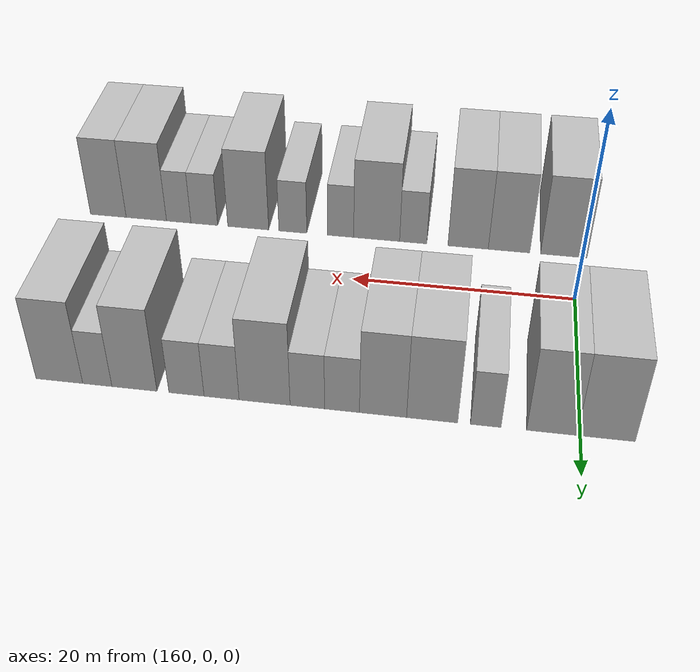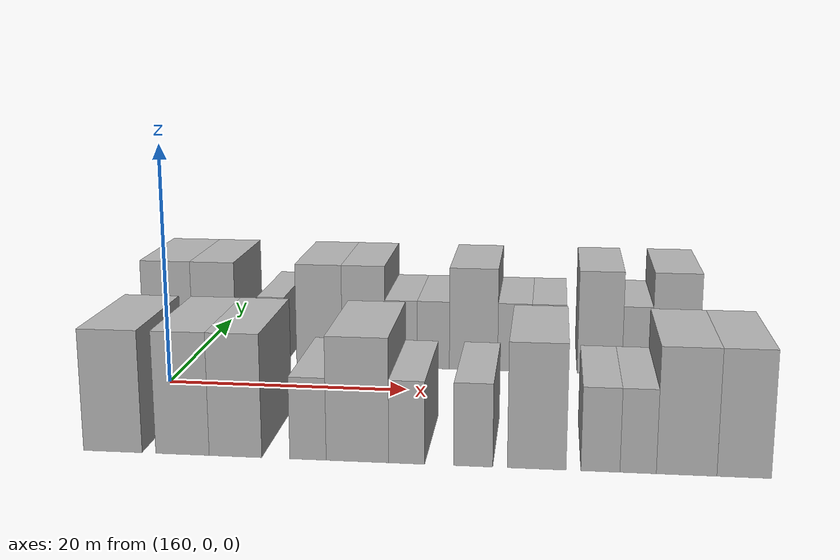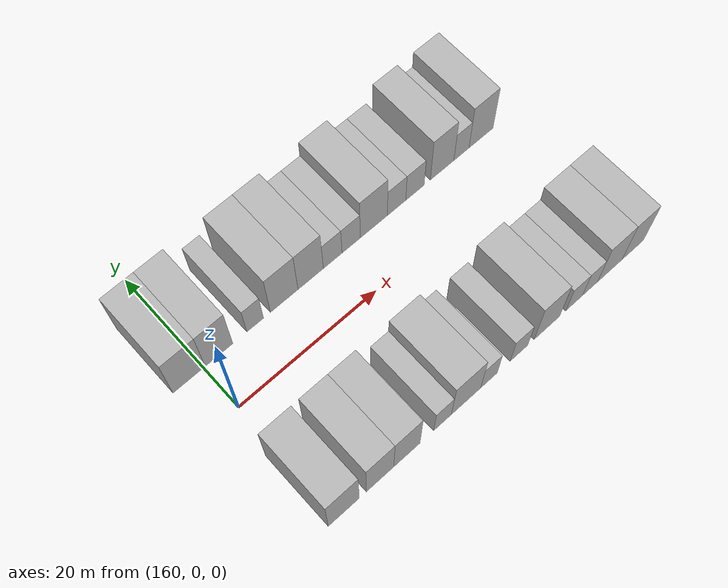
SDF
<sdf version="1.6">
 <world name="default">
  <model name="building_35">
   <static>1</static>
   <pose>157.9924 11.0000 0 0.000000 0.000000 1.570796</pose>
   <link name="link">
    <pose>0 0 4.50 0 0 0</pose>
    <collision name="collision"><geometry><box><size>10.0000 4.4797 9.0000</size></box></geometry></collision>
    <visual name="visual">
     <cast_shadows>0</cast_shadows>
     <geometry><box><size>10.0000 4.4797 9.0000</size></box></geometry>
     <material>
      <script>
       <uri>model://HANNAS_wall/materials/scripts</uri>
       <uri>model://HANNAS_wall/materials/textures</uri>
       <name>vrc/HANNAS_wall</name>
      </script>
     </material>
    </visual>
   </link>
  </model>
  <model name="building_36">
   <static>1</static>
   <pose>162.1914 11.0000 0 0.000000 0.000000 1.570796</pose>
   <link name="link">
    <pose>0 0 4.50 0 0 0</pose>
    <collision name="collision"><geometry><box><size>10.0000 3.9184 9.0000</size></box></geometry></collision>
    <visual name="visual">
     <cast_shadows>0</cast_shadows>
     <geometry><box><size>10.0000 3.9184 9.0000</size></box></geometry>
     <material>
      <script>
       <uri>model://HANNAS_wall/materials/scripts</uri>
       <uri>model://HANNAS_wall/materials/textures</uri>
       <name>vrc/HANNAS_wall</name>
      </script>
     </material>
    </visual>
   </link>
  </model>
  <model name="building_37">
   <static>1</static>
   <pose>167.3576 11.0000 0 0.000000 0.000000 1.570796</pose>
   <link name="link">
    <pose>0 0 3.00 0 0 0</pose>
    <collision name="collision"><geometry><box><size>10.0000 2.4139 6.0000</size></box></geometry></collision>
    <visual name="visual">
     <cast_shadows>0</cast_shadows>
     <geometry><box><size>10.0000 2.4139 6.0000</size></box></geometry>
     <material>
      <script>
       <uri>model://HANNAS_wall/materials/scripts</uri>
       <uri>model://HANNAS_wall/materials/textures</uri>
       <name>vrc/HANNAS_wall</name>
      </script>
     </material>
    </visual>
   </link>
  </model>
  <model name="building_38">
   <static>1</static>
   <pose>171.5949 11.0000 0 0.000000 0.000000 1.570796</pose>
   <link name="link">
    <pose>0 0 4.50 0 0 0</pose>
    <collision name="collision"><geometry><box><size>10.0000 4.0607 9.0000</size></box></geometry></collision>
    <visual name="visual">
     <cast_shadows>0</cast_shadows>
     <geometry><box><size>10.0000 4.0607 9.0000</size></box></geometry>
     <material>
      <script>
       <uri>model://HANNAS_wall/materials/scripts</uri>
       <uri>model://HANNAS_wall/materials/textures</uri>
       <name>vrc/HANNAS_wall</name>
      </script>
     </material>
    </visual>
   </link>
  </model>
  <model name="building_39">
   <static>1</static>
   <pose>175.5178 11.0000 0 0.000000 0.000000 1.570796</pose>
   <link name="link">
    <pose>0 0 4.50 0 0 0</pose>
    <collision name="collision"><geometry><box><size>10.0000 3.7851 9.0000</size></box></geometry></collision>
    <visual name="visual">
     <cast_shadows>0</cast_shadows>
     <geometry><box><size>10.0000 3.7851 9.0000</size></box></geometry>
     <material>
      <script>
       <uri>model://HANNAS_wall/materials/scripts</uri>
       <uri>model://HANNAS_wall/materials/textures</uri>
       <name>vrc/HANNAS_wall</name>
      </script>
     </material>
    </visual>
   </link>
  </model>
  <model name="building_40">
   <static>1</static>
   <pose>178.8198 11.0000 0 0.000000 0.000000 1.570796</pose>
   <link name="link">
    <pose>0 0 3.00 0 0 0</pose>
    <collision name="collision"><geometry><box><size>10.0000 2.8188 6.0000</size></box></geometry></collision>
    <visual name="visual">
     <cast_shadows>0</cast_shadows>
     <geometry><box><size>10.0000 2.8188 6.0000</size></box></geometry>
     <material>
      <script>
       <uri>model://HANNAS_wall/materials/scripts</uri>
       <uri>model://HANNAS_wall/materials/textures</uri>
       <name>vrc/HANNAS_wall</name>
      </script>
     </material>
    </visual>
   </link>
  </model>
  <model name="building_41">
   <static>1</static>
   <pose>181.6317 11.0000 0 0.000000 0.000000 1.570796</pose>
   <link name="link">
    <pose>0 0 3.00 0 0 0</pose>
    <collision name="collision"><geometry><box><size>10.0000 2.8050 6.0000</size></box></geometry></collision>
    <visual name="visual">
     <cast_shadows>0</cast_shadows>
     <geometry><box><size>10.0000 2.8050 6.0000</size></box></geometry>
     <material>
      <script>
       <uri>model://HANNAS_wall/materials/scripts</uri>
       <uri>model://HANNAS_wall/materials/textures</uri>
       <name>vrc/HANNAS_wall</name>
      </script>
     </material>
    </visual>
   </link>
  </model>
  <model name="building_42">
   <static>1</static>
   <pose>185.1262 11.0000 0 0.000000 0.000000 1.570796</pose>
   <link name="link">
    <pose>0 0 4.50 0 0 0</pose>
    <collision name="collision"><geometry><box><size>10.0000 4.1840 9.0000</size></box></geometry></collision>
    <visual name="visual">
     <cast_shadows>0</cast_shadows>
     <geometry><box><size>10.0000 4.1840 9.0000</size></box></geometry>
     <material>
      <script>
       <uri>model://HANNAS_wall/materials/scripts</uri>
       <uri>model://HANNAS_wall/materials/textures</uri>
       <name>vrc/HANNAS_wall</name>
      </script>
     </material>
    </visual>
   </link>
  </model>
  <model name="building_43">
   <static>1</static>
   <pose>188.6675 11.0000 0 0.000000 0.000000 1.570796</pose>
   <link name="link">
    <pose>0 0 3.00 0 0 0</pose>
    <collision name="collision"><geometry><box><size>10.0000 2.8985 6.0000</size></box></geometry></collision>
    <visual name="visual">
     <cast_shadows>0</cast_shadows>
     <geometry><box><size>10.0000 2.8985 6.0000</size></box></geometry>
     <material>
      <script>
       <uri>model://HANNAS_wall/materials/scripts</uri>
       <uri>model://HANNAS_wall/materials/textures</uri>
       <name>vrc/HANNAS_wall</name>
      </script>
     </material>
    </visual>
   </link>
  </model>
  <model name="building_44">
   <static>1</static>
   <pose>191.5837 11.0000 0 0.000000 0.000000 1.570796</pose>
   <link name="link">
    <pose>0 0 3.00 0 0 0</pose>
    <collision name="collision"><geometry><box><size>10.0000 2.9341 6.0000</size></box></geometry></collision>
    <visual name="visual">
     <cast_shadows>0</cast_shadows>
     <geometry><box><size>10.0000 2.9341 6.0000</size></box></geometry>
     <material>
      <script>
       <uri>model://HANNAS_wall/materials/scripts</uri>
       <uri>model://HANNAS_wall/materials/textures</uri>
       <name>vrc/HANNAS_wall</name>
      </script>
     </material>
    </visual>
   </link>
  </model>
  <model name="building_45">
   <static>1</static>
   <pose>195.9480 11.0000 0 0.000000 0.000000 1.570796</pose>
   <link name="link">
    <pose>0 0 4.50 0 0 0</pose>
    <collision name="collision"><geometry><box><size>10.0000 3.7945 9.0000</size></box></geometry></collision>
    <visual name="visual">
     <cast_shadows>0</cast_shadows>
     <geometry><box><size>10.0000 3.7945 9.0000</size></box></geometry>
     <material>
      <script>
       <uri>model://HANNAS_wall/materials/scripts</uri>
       <uri>model://HANNAS_wall/materials/textures</uri>
       <name>vrc/HANNAS_wall</name>
      </script>
     </material>
    </visual>
   </link>
  </model>
  <model name="building_46">
   <static>1</static>
   <pose>199.0831 11.0000 0 0.000000 0.000000 1.570796</pose>
   <link name="link">
    <pose>0 0 3.00 0 0 0</pose>
    <collision name="collision"><geometry><box><size>10.0000 2.4755 6.0000</size></box></geometry></collision>
    <visual name="visual">
     <cast_shadows>0</cast_shadows>
     <geometry><box><size>10.0000 2.4755 6.0000</size></box></geometry>
     <material>
      <script>
       <uri>model://HANNAS_wall/materials/scripts</uri>
       <uri>model://HANNAS_wall/materials/textures</uri>
       <name>vrc/HANNAS_wall</name>
      </script>
     </material>
    </visual>
   </link>
  </model>
  <model name="building_47">
   <static>1</static>
   <pose>202.3173 11.0000 0 0.000000 0.000000 1.570796</pose>
   <link name="link">
    <pose>0 0 4.50 0 0 0</pose>
    <collision name="collision"><geometry><box><size>10.0000 3.9930 9.0000</size></box></geometry></collision>
    <visual name="visual">
     <cast_shadows>0</cast_shadows>
     <geometry><box><size>10.0000 3.9930 9.0000</size></box></geometry>
     <material>
      <script>
       <uri>model://HANNAS_wall/materials/scripts</uri>
       <uri>model://HANNAS_wall/materials/textures</uri>
       <name>vrc/HANNAS_wall</name>
      </script>
     </material>
    </visual>
   </link>
  </model>
  <model name="building_87">
   <static>1</static>
   <pose>160.8537 -11.0000 0 0.000000 0.000000 1.570796</pose>
   <link name="link">
    <pose>0 0 4.50 0 0 0</pose>
    <collision name="collision"><geometry><box><size>10.0000 4.3074 9.0000</size></box></geometry></collision>
    <visual name="visual">
     <cast_shadows>0</cast_shadows>
     <geometry><box><size>10.0000 4.3074 9.0000</size></box></geometry>
     <material>
      <script>
       <uri>model://HANNAS_wall/materials/scripts</uri>
       <uri>model://HANNAS_wall/materials/textures</uri>
       <name>vrc/HANNAS_wall</name>
      </script>
     </material>
    </visual>
   </link>
  </model>
  <model name="building_88">
   <static>1</static>
   <pose>165.9508 -11.0000 0 0.000000 0.000000 1.570796</pose>
   <link name="link">
    <pose>0 0 4.50 0 0 0</pose>
    <collision name="collision"><geometry><box><size>10.0000 3.8868 9.0000</size></box></geometry></collision>
    <visual name="visual">
     <cast_shadows>0</cast_shadows>
     <geometry><box><size>10.0000 3.8868 9.0000</size></box></geometry>
     <material>
      <script>
       <uri>model://HANNAS_wall/materials/scripts</uri>
       <uri>model://HANNAS_wall/materials/textures</uri>
       <name>vrc/HANNAS_wall</name>
      </script>
     </material>
    </visual>
   </link>
  </model>
  <model name="building_89">
   <static>1</static>
   <pose>169.7916 -11.0000 0 0.000000 0.000000 1.570796</pose>
   <link name="link">
    <pose>0 0 4.50 0 0 0</pose>
    <collision name="collision"><geometry><box><size>10.0000 3.7949 9.0000</size></box></geometry></collision>
    <visual name="visual">
     <cast_shadows>0</cast_shadows>
     <geometry><box><size>10.0000 3.7949 9.0000</size></box></geometry>
     <material>
      <script>
       <uri>model://HANNAS_wall/materials/scripts</uri>
       <uri>model://HANNAS_wall/materials/textures</uri>
       <name>vrc/HANNAS_wall</name>
      </script>
     </material>
    </visual>
   </link>
  </model>
  <model name="building_90">
   <static>1</static>
   <pose>174.9838 -11.0000 0 0.000000 0.000000 1.570796</pose>
   <link name="link">
    <pose>0 0 3.00 0 0 0</pose>
    <collision name="collision"><geometry><box><size>10.0000 2.5894 6.0000</size></box></geometry></collision>
    <visual name="visual">
     <cast_shadows>0</cast_shadows>
     <geometry><box><size>10.0000 2.5894 6.0000</size></box></geometry>
     <material>
      <script>
       <uri>model://HANNAS_wall/materials/scripts</uri>
       <uri>model://HANNAS_wall/materials/textures</uri>
       <name>vrc/HANNAS_wall</name>
      </script>
     </material>
    </visual>
   </link>
  </model>
  <model name="building_91">
   <static>1</static>
   <pose>178.4813 -11.0000 0 0.000000 0.000000 1.570796</pose>
   <link name="link">
    <pose>0 0 4.50 0 0 0</pose>
    <collision name="collision"><geometry><box><size>10.0000 4.4056 9.0000</size></box></geometry></collision>
    <visual name="visual">
     <cast_shadows>0</cast_shadows>
     <geometry><box><size>10.0000 4.4056 9.0000</size></box></geometry>
     <material>
      <script>
       <uri>model://HANNAS_wall/materials/scripts</uri>
       <uri>model://HANNAS_wall/materials/textures</uri>
       <name>vrc/HANNAS_wall</name>
      </script>
     </material>
    </visual>
   </link>
  </model>
  <model name="building_92">
   <static>1</static>
   <pose>181.9466 -11.0000 0 0.000000 0.000000 1.570796</pose>
   <link name="link">
    <pose>0 0 3.00 0 0 0</pose>
    <collision name="collision"><geometry><box><size>10.0000 2.5250 6.0000</size></box></geometry></collision>
    <visual name="visual">
     <cast_shadows>0</cast_shadows>
     <geometry><box><size>10.0000 2.5250 6.0000</size></box></geometry>
     <material>
      <script>
       <uri>model://HANNAS_wall/materials/scripts</uri>
       <uri>model://HANNAS_wall/materials/textures</uri>
       <name>vrc/HANNAS_wall</name>
      </script>
     </material>
    </visual>
   </link>
  </model>
  <model name="building_93">
   <static>1</static>
   <pose>186.5686 -11.0000 0 0.000000 0.000000 1.570796</pose>
   <link name="link">
    <pose>0 0 3.00 0 0 0</pose>
    <collision name="collision"><geometry><box><size>10.0000 2.7190 6.0000</size></box></geometry></collision>
    <visual name="visual">
     <cast_shadows>0</cast_shadows>
     <geometry><box><size>10.0000 2.7190 6.0000</size></box></geometry>
     <material>
      <script>
       <uri>model://HANNAS_wall/materials/scripts</uri>
       <uri>model://HANNAS_wall/materials/textures</uri>
       <name>vrc/HANNAS_wall</name>
      </script>
     </material>
    </visual>
   </link>
  </model>
  <model name="building_94">
   <static>1</static>
   <pose>190.9398 -11.0000 0 0.000000 0.000000 1.570796</pose>
   <link name="link">
    <pose>0 0 4.50 0 0 0</pose>
    <collision name="collision"><geometry><box><size>10.0000 4.0235 9.0000</size></box></geometry></collision>
    <visual name="visual">
     <cast_shadows>0</cast_shadows>
     <geometry><box><size>10.0000 4.0235 9.0000</size></box></geometry>
     <material>
      <script>
       <uri>model://HANNAS_wall/materials/scripts</uri>
       <uri>model://HANNAS_wall/materials/textures</uri>
       <name>vrc/HANNAS_wall</name>
      </script>
     </material>
    </visual>
   </link>
  </model>
  <model name="building_95">
   <static>1</static>
   <pose>195.2740 -11.0000 0 0.000000 0.000000 1.570796</pose>
   <link name="link">
    <pose>0 0 3.00 0 0 0</pose>
    <collision name="collision"><geometry><box><size>10.0000 2.6449 6.0000</size></box></geometry></collision>
    <visual name="visual">
     <cast_shadows>0</cast_shadows>
     <geometry><box><size>10.0000 2.6449 6.0000</size></box></geometry>
     <material>
      <script>
       <uri>model://HANNAS_wall/materials/scripts</uri>
       <uri>model://HANNAS_wall/materials/textures</uri>
       <name>vrc/HANNAS_wall</name>
      </script>
     </material>
    </visual>
   </link>
  </model>
  <model name="building_96">
   <static>1</static>
   <pose>197.8183 -11.0000 0 0.000000 0.000000 1.570796</pose>
   <link name="link">
    <pose>0 0 3.00 0 0 0</pose>
    <collision name="collision"><geometry><box><size>10.0000 2.4437 6.0000</size></box></geometry></collision>
    <visual name="visual">
     <cast_shadows>0</cast_shadows>
     <geometry><box><size>10.0000 2.4437 6.0000</size></box></geometry>
     <material>
      <script>
       <uri>model://HANNAS_wall/materials/scripts</uri>
       <uri>model://HANNAS_wall/materials/textures</uri>
       <name>vrc/HANNAS_wall</name>
      </script>
     </material>
    </visual>
   </link>
  </model>
  <model name="building_97">
   <static>1</static>
   <pose>201.0612 -11.0000 0 0.000000 0.000000 1.570796</pose>
   <link name="link">
    <pose>0 0 4.50 0 0 0</pose>
    <collision name="collision"><geometry><box><size>10.0000 4.0422 9.0000</size></box></geometry></collision>
    <visual name="visual">
     <cast_shadows>0</cast_shadows>
     <geometry><box><size>10.0000 4.0422 9.0000</size></box></geometry>
     <material>
      <script>
       <uri>model://HANNAS_wall/materials/scripts</uri>
       <uri>model://HANNAS_wall/materials/textures</uri>
       <name>vrc/HANNAS_wall</name>
      </script>
     </material>
    </visual>
   </link>
  </model>
  <model name="building_98">
   <static>1</static>
   <pose>204.8836 -11.0000 0 0.000000 0.000000 1.570796</pose>
   <link name="link">
    <pose>0 0 4.50 0 0 0</pose>
    <collision name="collision"><geometry><box><size>10.0000 3.6025 9.0000</size></box></geometry></collision>
    <visual name="visual">
     <cast_shadows>0</cast_shadows>
     <geometry><box><size>10.0000 3.6025 9.0000</size></box></geometry>
     <material>
      <script>
       <uri>model://HANNAS_wall/materials/scripts</uri>
       <uri>model://HANNAS_wall/materials/textures</uri>
       <name>vrc/HANNAS_wall</name>
      </script>
     </material>
    </visual>
   </link>
  </model>
 </world>
</sdf>
